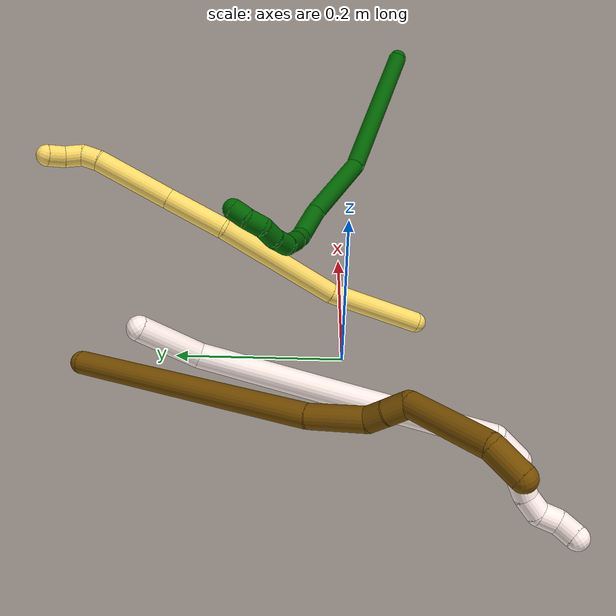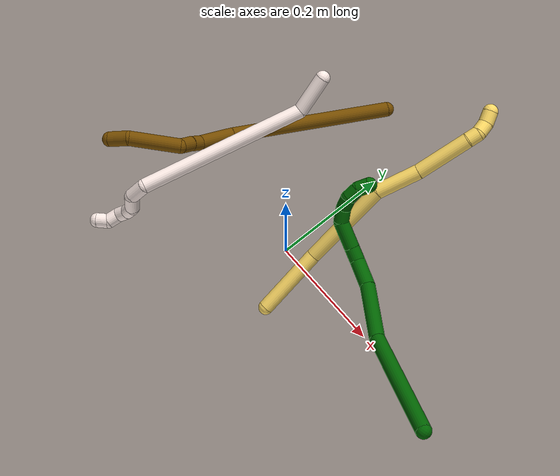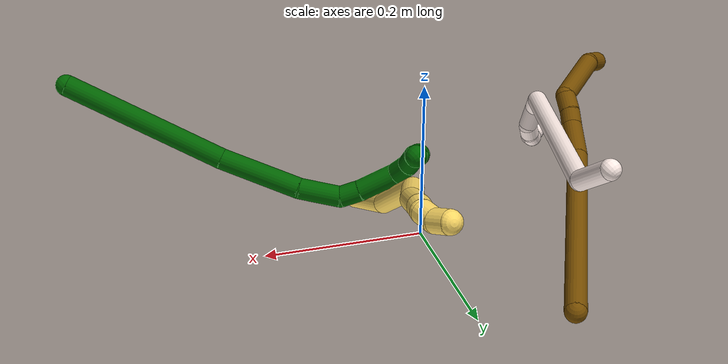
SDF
<sdf version="1.7">
 <world name="default">
  <model name="photoneo_s_sensor">
   <static>1</static>
   <pose>0 0 2 1.57079 1.57079 3.14159</pose>
   <link name="link">
    <inertial><mass>0.1</mass></inertial>
    <sensor name="sensor" type="depth">
     <update_rate>30</update_rate>
     <camera>
      <horizontal_fov>1.22</horizontal_fov>
      <image><width>1920</width><height>1200</height><format>B8G8R8</format></image>
      <clip><near>0.1</near><far>4</far></clip>
      <depth_camera><output>points</output></depth_camera>
     </camera>
     <plugin name="camera_plugin" filename="libgazebo_ros_depth_camera.so">
      <baseline>0.2</baseline>
      <alwaysOn>1</alwaysOn>
      <updateRate>0.0</updateRate>
      <cameraName>camera_ir</cameraName>
      <imageTopicName>/camera/color/image_raw</imageTopicName>
      <cameraInfoTopicName>/camera/color/camera_info</cameraInfoTopicName>
      <depthImageTopicName>/camera/depth/image_raw</depthImageTopicName>
      <depthImageCameraInfoTopicName>/camera/depth/camera_info</depthImageCameraInfoTopicName>
      <pointCloudTopicName>/camera/depth/points</pointCloudTopicName>
      <frameName>fr_optical</frameName>
      <pointCloudCutoff>0.1</pointCloudCutoff>
      <pointCloudCutoffMax>2.0</pointCloudCutoffMax>
      <distortionK1>0</distortionK1>
      <distortionK2>0</distortionK2>
      <distortionK3>0</distortionK3>
      <distortionT1>0</distortionT1>
      <distortionT2>0</distortionT2>
      <CxPrime>0</CxPrime>
      <Cx>0</Cx>
      <Cy>0</Cy>
      <focalLength>0</focalLength>
      <hackBaseline>0</hackBaseline>
     </plugin>
    </sensor>
   </link>
  </model>
  <model name="bin">
   <static>1</static>
   <link name="bottom">
    <collision name="collision-bottom">
     <pose>0 0 -0.01 0 -0 0</pose>
     <geometry><box><size>0.8 0.6 0.02</size></box></geometry>
     <surface>
      <friction><ode><mu>100</mu><mu2>100</mu2></ode></friction>
      <contact><collide_bitmask>65535</collide_bitmask></contact>
     </surface>
    </collision>
   </link>
   <link name="west_wall">
    <collision name="collision-west_wall">
     <pose>-0.41 0 0.1 0 -0 0</pose>
     <geometry><box><size>0.02 0.6 0.2</size></box></geometry>
     <surface>
      <friction><ode><mu>100</mu><mu2>100</mu2></ode></friction>
      <contact><collide_bitmask>65535</collide_bitmask></contact>
     </surface>
    </collision>
   </link>
   <link name="east_wall">
    <collision name="collision-east_wall">
     <pose>0.41 0 0.1 0 -0 0</pose>
     <geometry><box><size>0.02 0.6 0.2</size></box></geometry>
     <surface>
      <friction><ode><mu>100</mu><mu2>100</mu2></ode></friction>
      <contact><collide_bitmask>65535</collide_bitmask></contact>
     </surface>
    </collision>
   </link>
   <link name="south_wall">
    <collision name="collision-south_wall">
     <pose>0 -0.31 0.1 0 -0 0</pose>
     <geometry><box><size>0.8 0.02 0.2</size></box></geometry>
     <surface>
      <friction><ode><mu>100</mu><mu2>100</mu2></ode></friction>
      <contact><collide_bitmask>65535</collide_bitmask></contact>
     </surface>
    </collision>
   </link>
   <link name="north_wall">
    <collision name="collision-north_wall">
     <pose>0 0.31 0.1 0 -0 0</pose>
     <geometry><box><size>0.8 0.02 0.2</size></box></geometry>
     <surface>
      <friction><ode><mu>100</mu><mu2>100</mu2></ode></friction>
      <contact><collide_bitmask>65535</collide_bitmask></contact>
     </surface>
    </collision>
   </link>
  </model>
  <model name="5">
   <static>0</static>
   <link name="5">
    <collision name="collision-cylinder-e_1_1_4">
     <pose>0.000375 -0.001937 0.059121 0.032747 0.006339 0.000104</pose>
     <geometry><cylinder><radius>0.0125</radius><length>0.118307</length></cylinder></geometry>
     <surface>
      <friction><ode><mu>1.16</mu><mu2>1.16</mu2><slip1>0</slip1><slip2>0</slip2></ode></friction>
      <contact><ode><kp>1e+06</kp><kd>1</kd><max_vel>0</max_vel><min_depth>0.001</min_depth></ode></contact>
     </surface>
    </collision>
    <visual name="visual-cylinder-e_1_1_4">
     <pose>0.000375 -0.001937 0.059121 0.032747 0.006339 0.000104</pose>
     <geometry><cylinder><radius>0.0125</radius><length>0.118307</length></cylinder></geometry>
     <material><ambient>1 0.858824 0.4 1</ambient></material>
    </visual>
    <collision name="collision-cylinder-e_2_4_5">
     <pose>0.011414 0.005139 0.193836 -0.118659 0.139166 -0.00828</pose>
     <geometry><cylinder><radius>0.0125</radius><length>0.153746</length></cylinder></geometry>
     <surface>
      <friction><ode><mu>1.16</mu><mu2>1.16</mu2><slip1>0</slip1><slip2>0</slip2></ode></friction>
      <contact><ode><kp>1e+06</kp><kd>1</kd><max_vel>0</max_vel><min_depth>0.001</min_depth></ode></contact>
     </surface>
    </collision>
    <visual name="visual-cylinder-e_2_4_5">
     <pose>0.011414 0.005139 0.193836 -0.118659 0.139166 -0.00828</pose>
     <geometry><cylinder><radius>0.0125</radius><length>0.153746</length></cylinder></geometry>
     <material><ambient>1 0.858824 0.4 1</ambient></material>
    </visual>
    <collision name="collision-cylinder-e_3_5_6">
     <pose>0.015228 0.024733 0.304163 -0.295736 -0.186441 0.02785</pose>
     <geometry><cylinder><radius>0.0125</radius><length>0.073899</length></cylinder></geometry>
     <surface>
      <friction><ode><mu>1.16</mu><mu2>1.16</mu2><slip1>0</slip1><slip2>0</slip2></ode></friction>
      <contact><ode><kp>1e+06</kp><kd>1</kd><max_vel>0</max_vel><min_depth>0.001</min_depth></ode></contact>
     </surface>
    </collision>
    <visual name="visual-cylinder-e_3_5_6">
     <pose>0.015228 0.024733 0.304163 -0.295736 -0.186441 0.02785</pose>
     <geometry><cylinder><radius>0.0125</radius><length>0.073899</length></cylinder></geometry>
     <material><ambient>1 0.858824 0.4 1</ambient></material>
    </visual>
    <collision name="collision-cylinder-e_4_6_7">
     <pose>0.004846 0.045584 0.383912 -0.224265 -0.076366 0.008603</pose>
     <geometry><cylinder><radius>0.0125</radius><length>0.092615</length></cylinder></geometry>
     <surface>
      <friction><ode><mu>1.16</mu><mu2>1.16</mu2><slip1>0</slip1><slip2>0</slip2></ode></friction>
      <contact><ode><kp>1e+06</kp><kd>1</kd><max_vel>0</max_vel><min_depth>0.001</min_depth></ode></contact>
     </surface>
    </collision>
    <visual name="visual-cylinder-e_4_6_7">
     <pose>0.004846 0.045584 0.383912 -0.224265 -0.076366 0.008603</pose>
     <geometry><cylinder><radius>0.0125</radius><length>0.092615</length></cylinder></geometry>
     <material><ambient>1 0.858824 0.4 1</ambient></material>
    </visual>
    <collision name="collision-cylinder-e_5_7_8">
     <pose>-0.000916 0.057006 0.438693 -0.117682 -0.222996 0.013191</pose>
     <geometry><cylinder><radius>0.0125</radius><length>0.020164</length></cylinder></geometry>
     <surface>
      <friction><ode><mu>1.16</mu><mu2>1.16</mu2><slip1>0</slip1><slip2>0</slip2></ode></friction>
      <contact><ode><kp>1e+06</kp><kd>1</kd><max_vel>0</max_vel><min_depth>0.001</min_depth></ode></contact>
     </surface>
    </collision>
    <visual name="visual-cylinder-e_5_7_8">
     <pose>-0.000916 0.057006 0.438693 -0.117682 -0.222996 0.013191</pose>
     <geometry><cylinder><radius>0.0125</radius><length>0.020164</length></cylinder></geometry>
     <material><ambient>1 0.858824 0.4 1</ambient></material>
    </visual>
    <collision name="collision-cylinder-e_6_8_9">
     <pose>-0.006056 0.054534 0.457618 0.376979 -0.287187 -0.055148</pose>
     <geometry><cylinder><radius>0.0125</radius><length>0.020545</length></cylinder></geometry>
     <surface>
      <friction><ode><mu>1.16</mu><mu2>1.16</mu2><slip1>0</slip1><slip2>0</slip2></ode></friction>
      <contact><ode><kp>1e+06</kp><kd>1</kd><max_vel>0</max_vel><min_depth>0.001</min_depth></ode></contact>
     </surface>
    </collision>
    <visual name="visual-cylinder-e_6_8_9">
     <pose>-0.006056 0.054534 0.457618 0.376979 -0.287187 -0.055148</pose>
     <geometry><cylinder><radius>0.0125</radius><length>0.020545</length></cylinder></geometry>
     <material><ambient>1 0.858824 0.4 1</ambient></material>
    </visual>
    <collision name="collision-cylinder-e_7_9_2">
     <pose>-0.00794 0.046571 0.476132 0.434071 0.099188 0.021889</pose>
     <geometry><cylinder><radius>0.0125</radius><length>0.020723</length></cylinder></geometry>
     <surface>
      <friction><ode><mu>1.16</mu><mu2>1.16</mu2><slip1>0</slip1><slip2>0</slip2></ode></friction>
      <contact><ode><kp>1e+06</kp><kd>1</kd><max_vel>0</max_vel><min_depth>0.001</min_depth></ode></contact>
     </surface>
    </collision>
    <visual name="visual-cylinder-e_7_9_2">
     <pose>-0.00794 0.046571 0.476132 0.434071 0.099188 0.021889</pose>
     <geometry><cylinder><radius>0.0125</radius><length>0.020723</length></cylinder></geometry>
     <material><ambient>1 0.858824 0.4 1</ambient></material>
    </visual>
    <collision name="collision-sphere-2">
     <pose>-0.006913 0.042235 0.485487 0 -0 0</pose>
     <geometry><sphere><radius>0.0125</radius></sphere></geometry>
     <surface>
      <friction><ode><mu>1.16</mu><mu2>1.16</mu2><slip1>0</slip1><slip2>0</slip2></ode></friction>
      <contact><ode><kp>1e+06</kp><kd>1</kd><max_vel>0</max_vel><min_depth>0.001</min_depth></ode></contact>
     </surface>
    </collision>
    <visual name="visual-sphere-2">
     <pose>-0.006913 0.042235 0.485487 0 -0 0</pose>
     <geometry><sphere><radius>0.0125</radius></sphere></geometry>
     <material><ambient>1 0.858824 0.4 1</ambient></material>
    </visual>
    <collision name="collision-sphere-9">
     <pose>-0.008966 0.050908 0.466778 0 -0 0</pose>
     <geometry><sphere><radius>0.0125</radius></sphere></geometry>
     <surface>
      <friction><ode><mu>1.16</mu><mu2>1.16</mu2><slip1>0</slip1><slip2>0</slip2></ode></friction>
      <contact><ode><kp>1e+06</kp><kd>1</kd><max_vel>0</max_vel><min_depth>0.001</min_depth></ode></contact>
     </surface>
    </collision>
    <visual name="visual-sphere-9">
     <pose>-0.008966 0.050908 0.466778 0 -0 0</pose>
     <geometry><sphere><radius>0.0125</radius></sphere></geometry>
     <material><ambient>1 0.858824 0.4 1</ambient></material>
    </visual>
    <collision name="collision-sphere-4">
     <pose>0.00075 -0.003873 0.118241 0 -0 0</pose>
     <geometry><sphere><radius>0.0125</radius></sphere></geometry>
     <surface>
      <friction><ode><mu>1.16</mu><mu2>1.16</mu2><slip1>0</slip1><slip2>0</slip2></ode></friction>
      <contact><ode><kp>1e+06</kp><kd>1</kd><max_vel>0</max_vel><min_depth>0.001</min_depth></ode></contact>
     </surface>
    </collision>
    <visual name="visual-sphere-4">
     <pose>0.00075 -0.003873 0.118241 0 -0 0</pose>
     <geometry><sphere><radius>0.0125</radius></sphere></geometry>
     <material><ambient>1 0.858824 0.4 1</ambient></material>
    </visual>
    <collision name="collision-sphere-1">
     <geometry><sphere><radius>0.0125</radius></sphere></geometry>
     <surface>
      <friction><ode><mu>1.16</mu><mu2>1.16</mu2><slip1>0</slip1><slip2>0</slip2></ode></friction>
      <contact><ode><kp>1e+06</kp><kd>1</kd><max_vel>0</max_vel><min_depth>0.001</min_depth></ode></contact>
     </surface>
    </collision>
    <visual name="visual-sphere-1">
     <geometry><sphere><radius>0.0125</radius></sphere></geometry>
     <material><ambient>1 0.858824 0.4 1</ambient></material>
    </visual>
    <collision name="collision-sphere-8">
     <pose>-0.003146 0.058161 0.448458 0 -0 0</pose>
     <geometry><sphere><radius>0.0125</radius></sphere></geometry>
     <surface>
      <friction><ode><mu>1.16</mu><mu2>1.16</mu2><slip1>0</slip1><slip2>0</slip2></ode></friction>
      <contact><ode><kp>1e+06</kp><kd>1</kd><max_vel>0</max_vel><min_depth>0.001</min_depth></ode></contact>
     </surface>
    </collision>
    <visual name="visual-sphere-8">
     <pose>-0.003146 0.058161 0.448458 0 -0 0</pose>
     <geometry><sphere><radius>0.0125</radius></sphere></geometry>
     <material><ambient>1 0.858824 0.4 1</ambient></material>
    </visual>
    <collision name="collision-sphere-5">
     <pose>0.022077 0.014151 0.26943 0 -0 0</pose>
     <geometry><sphere><radius>0.0125</radius></sphere></geometry>
     <surface>
      <friction><ode><mu>1.16</mu><mu2>1.16</mu2><slip1>0</slip1><slip2>0</slip2></ode></friction>
      <contact><ode><kp>1e+06</kp><kd>1</kd><max_vel>0</max_vel><min_depth>0.001</min_depth></ode></contact>
     </surface>
    </collision>
    <visual name="visual-sphere-5">
     <pose>0.022077 0.014151 0.26943 0 -0 0</pose>
     <geometry><sphere><radius>0.0125</radius></sphere></geometry>
     <material><ambient>1 0.858824 0.4 1</ambient></material>
    </visual>
    <collision name="collision-sphere-6">
     <pose>0.008379 0.035315 0.338896 0 -0 0</pose>
     <geometry><sphere><radius>0.0125</radius></sphere></geometry>
     <surface>
      <friction><ode><mu>1.16</mu><mu2>1.16</mu2><slip1>0</slip1><slip2>0</slip2></ode></friction>
      <contact><ode><kp>1e+06</kp><kd>1</kd><max_vel>0</max_vel><min_depth>0.001</min_depth></ode></contact>
     </surface>
    </collision>
    <visual name="visual-sphere-6">
     <pose>0.008379 0.035315 0.338896 0 -0 0</pose>
     <geometry><sphere><radius>0.0125</radius></sphere></geometry>
     <material><ambient>1 0.858824 0.4 1</ambient></material>
    </visual>
    <collision name="collision-sphere-7">
     <pose>0.001313 0.055852 0.428929 0 -0 0</pose>
     <geometry><sphere><radius>0.0125</radius></sphere></geometry>
     <surface>
      <friction><ode><mu>1.16</mu><mu2>1.16</mu2><slip1>0</slip1><slip2>0</slip2></ode></friction>
      <contact><ode><kp>1e+06</kp><kd>1</kd><max_vel>0</max_vel><min_depth>0.001</min_depth></ode></contact>
     </surface>
    </collision>
    <visual name="visual-sphere-7">
     <pose>0.001313 0.055852 0.428929 0 -0 0</pose>
     <geometry><sphere><radius>0.0125</radius></sphere></geometry>
     <material><ambient>1 0.858824 0.4 1</ambient></material>
    </visual>
    <inertial>
     <pose>0.006132 0.019691 0.245888 0 -0 0</pose>
     <mass>0.5</mass>
     <inertia><ixx>0.000557</ixx><ixy>0</ixy><ixz>0</ixz><iyy>0.000559</iyy><iyz>0</iyz><izz>-5e-05</izz></inertia>
    </inertial>
   </link>
   <pose>0.059446 -0.093132 0.011408 0.689457 -1.00521 -2.32618</pose>
  </model>
  <model name="6">
   <static>0</static>
   <link name="6">
    <collision name="collision-cylinder-e_1_1_4">
     <pose>-0.045336 -0.072675 0.048286 0.984361 -0.479199 -0.260492</pose>
     <geometry><cylinder><radius>0.0125</radius><length>0.196658</length></cylinder></geometry>
     <surface>
      <friction><ode><mu>1.16</mu><mu2>1.16</mu2><slip1>0</slip1><slip2>0</slip2></ode></friction>
      <contact><ode><kp>1e+06</kp><kd>1</kd><max_vel>0</max_vel><min_depth>0.001</min_depth></ode></contact>
     </surface>
    </collision>
    <visual name="visual-cylinder-e_1_1_4">
     <pose>-0.045336 -0.072675 0.048286 0.984361 -0.479199 -0.260492</pose>
     <geometry><cylinder><radius>0.0125</radius><length>0.196658</length></cylinder></geometry>
     <material><ambient>0 0.392157 0.003922 1</ambient></material>
    </visual>
    <collision name="collision-cylinder-e_2_4_5">
     <pose>-0.124737 -0.172946 0.119692 0.873413 -0.757766 -0.367463</pose>
     <geometry><cylinder><radius>0.0125</radius><length>0.099126</length></cylinder></geometry>
     <surface>
      <friction><ode><mu>1.16</mu><mu2>1.16</mu2><slip1>0</slip1><slip2>0</slip2></ode></friction>
      <contact><ode><kp>1e+06</kp><kd>1</kd><max_vel>0</max_vel><min_depth>0.001</min_depth></ode></contact>
     </surface>
    </collision>
    <visual name="visual-cylinder-e_2_4_5">
     <pose>-0.124737 -0.172946 0.119692 0.873413 -0.757766 -0.367463</pose>
     <geometry><cylinder><radius>0.0125</radius><length>0.099126</length></cylinder></geometry>
     <material><ambient>0 0.392157 0.003922 1</ambient></material>
    </visual>
    <collision name="collision-cylinder-e_3_5_6">
     <pose>-0.172751 -0.213078 0.158192 0.683906 -0.612755 -0.224248</pose>
     <geometry><cylinder><radius>0.0125</radius><length>0.048509</length></cylinder></geometry>
     <surface>
      <friction><ode><mu>1.16</mu><mu2>1.16</mu2><slip1>0</slip1><slip2>0</slip2></ode></friction>
      <contact><ode><kp>1e+06</kp><kd>1</kd><max_vel>0</max_vel><min_depth>0.001</min_depth></ode></contact>
     </surface>
    </collision>
    <visual name="visual-cylinder-e_3_5_6">
     <pose>-0.172751 -0.213078 0.158192 0.683906 -0.612755 -0.224248</pose>
     <geometry><cylinder><radius>0.0125</radius><length>0.048509</length></cylinder></geometry>
     <material><ambient>0 0.392157 0.003922 1</ambient></material>
    </visual>
    <collision name="collision-cylinder-e_4_6_7">
     <pose>-0.19325 -0.226039 0.183563 0.042405 -0.579849 -0.012653</pose>
     <geometry><cylinder><radius>0.0125</radius><length>0.023908</length></cylinder></geometry>
     <surface>
      <friction><ode><mu>1.16</mu><mu2>1.16</mu2><slip1>0</slip1><slip2>0</slip2></ode></friction>
      <contact><ode><kp>1e+06</kp><kd>1</kd><max_vel>0</max_vel><min_depth>0.001</min_depth></ode></contact>
     </surface>
    </collision>
    <visual name="visual-cylinder-e_4_6_7">
     <pose>-0.19325 -0.226039 0.183563 0.042405 -0.579849 -0.012653</pose>
     <geometry><cylinder><radius>0.0125</radius><length>0.023908</length></cylinder></geometry>
     <material><ambient>0 0.392157 0.003922 1</ambient></material>
    </visual>
    <collision name="collision-cylinder-e_5_7_8">
     <pose>-0.211602 -0.224365 0.212886 -0.108086 -0.545487 0.03026</pose>
     <geometry><cylinder><radius>0.0125</radius><length>0.045494</length></cylinder></geometry>
     <surface>
      <friction><ode><mu>1.16</mu><mu2>1.16</mu2><slip1>0</slip1><slip2>0</slip2></ode></friction>
      <contact><ode><kp>1e+06</kp><kd>1</kd><max_vel>0</max_vel><min_depth>0.001</min_depth></ode></contact>
     </surface>
    </collision>
    <visual name="visual-cylinder-e_5_7_8">
     <pose>-0.211602 -0.224365 0.212886 -0.108086 -0.545487 0.03026</pose>
     <geometry><cylinder><radius>0.0125</radius><length>0.045494</length></cylinder></geometry>
     <material><ambient>0 0.392157 0.003922 1</ambient></material>
    </visual>
    <collision name="collision-cylinder-e_6_8_9">
     <pose>-0.232636 -0.21708 0.237596 -0.767324 -0.890425 0.380568</pose>
     <geometry><cylinder><radius>0.0125</radius><length>0.023753</length></cylinder></geometry>
     <surface>
      <friction><ode><mu>1.16</mu><mu2>1.16</mu2><slip1>0</slip1><slip2>0</slip2></ode></friction>
      <contact><ode><kp>1e+06</kp><kd>1</kd><max_vel>0</max_vel><min_depth>0.001</min_depth></ode></contact>
     </surface>
    </collision>
    <visual name="visual-cylinder-e_6_8_9">
     <pose>-0.232636 -0.21708 0.237596 -0.767324 -0.890425 0.380568</pose>
     <geometry><cylinder><radius>0.0125</radius><length>0.023753</length></cylinder></geometry>
     <material><ambient>0 0.392157 0.003922 1</ambient></material>
    </visual>
    <collision name="collision-cylinder-e_7_9_10">
     <pose>-0.249882 -0.204789 0.245479 -1.23179 -0.816241 0.593944</pose>
     <geometry><cylinder><radius>0.0125</radius><length>0.021998</length></cylinder></geometry>
     <surface>
      <friction><ode><mu>1.16</mu><mu2>1.16</mu2><slip1>0</slip1><slip2>0</slip2></ode></friction>
      <contact><ode><kp>1e+06</kp><kd>1</kd><max_vel>0</max_vel><min_depth>0.001</min_depth></ode></contact>
     </surface>
    </collision>
    <visual name="visual-cylinder-e_7_9_10">
     <pose>-0.249882 -0.204789 0.245479 -1.23179 -0.816241 0.593944</pose>
     <geometry><cylinder><radius>0.0125</radius><length>0.021998</length></cylinder></geometry>
     <material><ambient>0 0.392157 0.003922 1</ambient></material>
    </visual>
    <collision name="collision-cylinder-e_8_10_11">
     <pose>-0.266868 -0.193221 0.246263 -1.939 -1.08104 1.43742</pose>
     <geometry><cylinder><radius>0.0125</radius><length>0.020336</length></cylinder></geometry>
     <surface>
      <friction><ode><mu>1.16</mu><mu2>1.16</mu2><slip1>0</slip1><slip2>0</slip2></ode></friction>
      <contact><ode><kp>1e+06</kp><kd>1</kd><max_vel>0</max_vel><min_depth>0.001</min_depth></ode></contact>
     </surface>
    </collision>
    <visual name="visual-cylinder-e_8_10_11">
     <pose>-0.266868 -0.193221 0.246263 -1.939 -1.08104 1.43742</pose>
     <geometry><cylinder><radius>0.0125</radius><length>0.020336</length></cylinder></geometry>
     <material><ambient>0 0.392157 0.003922 1</ambient></material>
    </visual>
    <collision name="collision-cylinder-e_9_11_2">
     <pose>-0.283191 -0.18425 0.239265 -2.43456 -0.814068 1.72568</pose>
     <geometry><cylinder><radius>0.0125</radius><length>0.020218</length></cylinder></geometry>
     <surface>
      <friction><ode><mu>1.16</mu><mu2>1.16</mu2><slip1>0</slip1><slip2>0</slip2></ode></friction>
      <contact><ode><kp>1e+06</kp><kd>1</kd><max_vel>0</max_vel><min_depth>0.001</min_depth></ode></contact>
     </surface>
    </collision>
    <visual name="visual-cylinder-e_9_11_2">
     <pose>-0.283191 -0.18425 0.239265 -2.43456 -0.814068 1.72568</pose>
     <geometry><cylinder><radius>0.0125</radius><length>0.020218</length></cylinder></geometry>
     <material><ambient>0 0.392157 0.003922 1</ambient></material>
    </visual>
    <collision name="collision-sphere-2">
     <pose>-0.290541 -0.179742 0.233988 0 -0 0</pose>
     <geometry><sphere><radius>0.0125</radius></sphere></geometry>
     <surface>
      <friction><ode><mu>1.16</mu><mu2>1.16</mu2><slip1>0</slip1><slip2>0</slip2></ode></friction>
      <contact><ode><kp>1e+06</kp><kd>1</kd><max_vel>0</max_vel><min_depth>0.001</min_depth></ode></contact>
     </surface>
    </collision>
    <visual name="visual-sphere-2">
     <pose>-0.290541 -0.179742 0.233988 0 -0 0</pose>
     <geometry><sphere><radius>0.0125</radius></sphere></geometry>
     <material><ambient>0 0.392157 0.003922 1</ambient></material>
    </visual>
    <collision name="collision-sphere-11">
     <pose>-0.27584 -0.188759 0.244542 0 -0 0</pose>
     <geometry><sphere><radius>0.0125</radius></sphere></geometry>
     <surface>
      <friction><ode><mu>1.16</mu><mu2>1.16</mu2><slip1>0</slip1><slip2>0</slip2></ode></friction>
      <contact><ode><kp>1e+06</kp><kd>1</kd><max_vel>0</max_vel><min_depth>0.001</min_depth></ode></contact>
     </surface>
    </collision>
    <visual name="visual-sphere-11">
     <pose>-0.27584 -0.188759 0.244542 0 -0 0</pose>
     <geometry><sphere><radius>0.0125</radius></sphere></geometry>
     <material><ambient>0 0.392157 0.003922 1</ambient></material>
    </visual>
    <collision name="collision-sphere-10">
     <pose>-0.257895 -0.197684 0.247985 0 -0 0</pose>
     <geometry><sphere><radius>0.0125</radius></sphere></geometry>
     <surface>
      <friction><ode><mu>1.16</mu><mu2>1.16</mu2><slip1>0</slip1><slip2>0</slip2></ode></friction>
      <contact><ode><kp>1e+06</kp><kd>1</kd><max_vel>0</max_vel><min_depth>0.001</min_depth></ode></contact>
     </surface>
    </collision>
    <visual name="visual-sphere-10">
     <pose>-0.257895 -0.197684 0.247985 0 -0 0</pose>
     <geometry><sphere><radius>0.0125</radius></sphere></geometry>
     <material><ambient>0 0.392157 0.003922 1</ambient></material>
    </visual>
    <collision name="collision-sphere-9">
     <pose>-0.241868 -0.211894 0.242974 0 -0 0</pose>
     <geometry><sphere><radius>0.0125</radius></sphere></geometry>
     <surface>
      <friction><ode><mu>1.16</mu><mu2>1.16</mu2><slip1>0</slip1><slip2>0</slip2></ode></friction>
      <contact><ode><kp>1e+06</kp><kd>1</kd><max_vel>0</max_vel><min_depth>0.001</min_depth></ode></contact>
     </surface>
    </collision>
    <visual name="visual-sphere-9">
     <pose>-0.241868 -0.211894 0.242974 0 -0 0</pose>
     <geometry><sphere><radius>0.0125</radius></sphere></geometry>
     <material><ambient>0 0.392157 0.003922 1</ambient></material>
    </visual>
    <collision name="collision-sphere-4">
     <pose>-0.090673 -0.14535 0.096571 0 -0 0</pose>
     <geometry><sphere><radius>0.0125</radius></sphere></geometry>
     <surface>
      <friction><ode><mu>1.16</mu><mu2>1.16</mu2><slip1>0</slip1><slip2>0</slip2></ode></friction>
      <contact><ode><kp>1e+06</kp><kd>1</kd><max_vel>0</max_vel><min_depth>0.001</min_depth></ode></contact>
     </surface>
    </collision>
    <visual name="visual-sphere-4">
     <pose>-0.090673 -0.14535 0.096571 0 -0 0</pose>
     <geometry><sphere><radius>0.0125</radius></sphere></geometry>
     <material><ambient>0 0.392157 0.003922 1</ambient></material>
    </visual>
    <collision name="collision-sphere-1">
     <geometry><sphere><radius>0.0125</radius></sphere></geometry>
     <surface>
      <friction><ode><mu>1.16</mu><mu2>1.16</mu2><slip1>0</slip1><slip2>0</slip2></ode></friction>
      <contact><ode><kp>1e+06</kp><kd>1</kd><max_vel>0</max_vel><min_depth>0.001</min_depth></ode></contact>
     </surface>
    </collision>
    <visual name="visual-sphere-1">
     <geometry><sphere><radius>0.0125</radius></sphere></geometry>
     <material><ambient>0 0.392157 0.003922 1</ambient></material>
    </visual>
    <collision name="collision-sphere-8">
     <pose>-0.223404 -0.222267 0.232219 0 -0 0</pose>
     <geometry><sphere><radius>0.0125</radius></sphere></geometry>
     <surface>
      <friction><ode><mu>1.16</mu><mu2>1.16</mu2><slip1>0</slip1><slip2>0</slip2></ode></friction>
      <contact><ode><kp>1e+06</kp><kd>1</kd><max_vel>0</max_vel><min_depth>0.001</min_depth></ode></contact>
     </surface>
    </collision>
    <visual name="visual-sphere-8">
     <pose>-0.223404 -0.222267 0.232219 0 -0 0</pose>
     <geometry><sphere><radius>0.0125</radius></sphere></geometry>
     <material><ambient>0 0.392157 0.003922 1</ambient></material>
    </visual>
    <collision name="collision-sphere-5">
     <pose>-0.158802 -0.200542 0.142812 0 -0 0</pose>
     <geometry><sphere><radius>0.0125</radius></sphere></geometry>
     <surface>
      <friction><ode><mu>1.16</mu><mu2>1.16</mu2><slip1>0</slip1><slip2>0</slip2></ode></friction>
      <contact><ode><kp>1e+06</kp><kd>1</kd><max_vel>0</max_vel><min_depth>0.001</min_depth></ode></contact>
     </surface>
    </collision>
    <visual name="visual-sphere-5">
     <pose>-0.158802 -0.200542 0.142812 0 -0 0</pose>
     <geometry><sphere><radius>0.0125</radius></sphere></geometry>
     <material><ambient>0 0.392157 0.003922 1</ambient></material>
    </visual>
    <collision name="collision-sphere-6">
     <pose>-0.186701 -0.225615 0.173571 0 -0 0</pose>
     <geometry><sphere><radius>0.0125</radius></sphere></geometry>
     <surface>
      <friction><ode><mu>1.16</mu><mu2>1.16</mu2><slip1>0</slip1><slip2>0</slip2></ode></friction>
      <contact><ode><kp>1e+06</kp><kd>1</kd><max_vel>0</max_vel><min_depth>0.001</min_depth></ode></contact>
     </surface>
    </collision>
    <visual name="visual-sphere-6">
     <pose>-0.186701 -0.225615 0.173571 0 -0 0</pose>
     <geometry><sphere><radius>0.0125</radius></sphere></geometry>
     <material><ambient>0 0.392157 0.003922 1</ambient></material>
    </visual>
    <collision name="collision-sphere-7">
     <pose>-0.1998 -0.226463 0.193554 0 -0 0</pose>
     <geometry><sphere><radius>0.0125</radius></sphere></geometry>
     <surface>
      <friction><ode><mu>1.16</mu><mu2>1.16</mu2><slip1>0</slip1><slip2>0</slip2></ode></friction>
      <contact><ode><kp>1e+06</kp><kd>1</kd><max_vel>0</max_vel><min_depth>0.001</min_depth></ode></contact>
     </surface>
    </collision>
    <visual name="visual-sphere-7">
     <pose>-0.1998 -0.226463 0.193554 0 -0 0</pose>
     <geometry><sphere><radius>0.0125</radius></sphere></geometry>
     <material><ambient>0 0.392157 0.003922 1</ambient></material>
    </visual>
    <inertial>
     <pose>-0.132165 -0.149398 0.127994 0 -0 0</pose>
     <mass>0.5</mass>
     <inertia>
      <ixx>0.000438</ixx>
      <ixy>0</ixy>
      <ixz>0</ixz>
      <iyy>0.000318</iyy>
      <iyz>0</iyz>
      <izz>0.000914</izz>
     </inertia>
    </inertial>
   </link>
   <pose>0.407425 -0.081297 0.216929 1.22375 0.169891 -1.28534</pose>
  </model>
  <model name="11">
   <static>0</static>
   <link name="11">
    <collision name="collision-cylinder-e_1_1_4">
     <pose>0.028022 -0.009012 0.015903 0.515572 0.992811 0.283693</pose>
     <geometry><cylinder><radius>0.0125</radius><length>0.066914</length></cylinder></geometry>
     <surface>
      <friction><ode><mu>1.16</mu><mu2>1.16</mu2><slip1>0</slip1><slip2>0</slip2></ode></friction>
      <contact><ode><kp>1e+06</kp><kd>1</kd><max_vel>0</max_vel><min_depth>0.001</min_depth></ode></contact>
     </surface>
    </collision>
    <visual name="visual-cylinder-e_1_1_4">
     <pose>0.028022 -0.009012 0.015903 0.515572 0.992811 0.283693</pose>
     <geometry><cylinder><radius>0.0125</radius><length>0.066914</length></cylinder></geometry>
     <material><ambient>1 0.933333 0.909804 1</ambient></material>
    </visual>
    <collision name="collision-cylinder-e_2_4_5">
     <pose>0.109757 -0.110168 0.128839 0.759555 0.381708 0.153933</pose>
     <geometry><cylinder><radius>0.0125</radius><length>0.288381</length></cylinder></geometry>
     <surface>
      <friction><ode><mu>1.16</mu><mu2>1.16</mu2><slip1>0</slip1><slip2>0</slip2></ode></friction>
      <contact><ode><kp>1e+06</kp><kd>1</kd><max_vel>0</max_vel><min_depth>0.001</min_depth></ode></contact>
     </surface>
    </collision>
    <visual name="visual-cylinder-e_2_4_5">
     <pose>0.109757 -0.110168 0.128839 0.759555 0.381708 0.153933</pose>
     <geometry><cylinder><radius>0.0125</radius><length>0.288381</length></cylinder></geometry>
     <material><ambient>1 0.933333 0.909804 1</ambient></material>
    </visual>
    <collision name="collision-cylinder-e_3_5_6">
     <pose>0.176545 -0.210972 0.22964 1.1605 0.945258 0.64678</pose>
     <geometry><cylinder><radius>0.0125</radius><length>0.032261</length></cylinder></geometry>
     <surface>
      <friction><ode><mu>1.16</mu><mu2>1.16</mu2><slip1>0</slip1><slip2>0</slip2></ode></friction>
      <contact><ode><kp>1e+06</kp><kd>1</kd><max_vel>0</max_vel><min_depth>0.001</min_depth></ode></contact>
     </surface>
    </collision>
    <visual name="visual-cylinder-e_3_5_6">
     <pose>0.176545 -0.210972 0.22964 1.1605 0.945258 0.64678</pose>
     <geometry><cylinder><radius>0.0125</radius><length>0.032261</length></cylinder></geometry>
     <material><ambient>1 0.933333 0.909804 1</ambient></material>
    </visual>
    <collision name="collision-cylinder-e_4_6_7">
     <pose>0.205068 -0.219467 0.2311 -3.06967 1.42213 -3.05811</pose>
     <geometry><cylinder><radius>0.0125</radius><length>0.031239</length></cylinder></geometry>
     <surface>
      <friction><ode><mu>1.16</mu><mu2>1.16</mu2><slip1>0</slip1><slip2>0</slip2></ode></friction>
      <contact><ode><kp>1e+06</kp><kd>1</kd><max_vel>0</max_vel><min_depth>0.001</min_depth></ode></contact>
     </surface>
    </collision>
    <visual name="visual-cylinder-e_4_6_7">
     <pose>0.205068 -0.219467 0.2311 -3.06967 1.42213 -3.05811</pose>
     <geometry><cylinder><radius>0.0125</radius><length>0.031239</length></cylinder></geometry>
     <material><ambient>1 0.933333 0.909804 1</ambient></material>
    </visual>
    <collision name="collision-cylinder-e_5_7_8">
     <pose>0.229035 -0.224659 0.227294 1.84358 0.992306 1.23951</pose>
     <geometry><cylinder><radius>0.0125</radius><length>0.020351</length></cylinder></geometry>
     <surface>
      <friction><ode><mu>1.16</mu><mu2>1.16</mu2><slip1>0</slip1><slip2>0</slip2></ode></friction>
      <contact><ode><kp>1e+06</kp><kd>1</kd><max_vel>0</max_vel><min_depth>0.001</min_depth></ode></contact>
     </surface>
    </collision>
    <visual name="visual-cylinder-e_5_7_8">
     <pose>0.229035 -0.224659 0.227294 1.84358 0.992306 1.23951</pose>
     <geometry><cylinder><radius>0.0125</radius><length>0.020351</length></cylinder></geometry>
     <material><ambient>1 0.933333 0.909804 1</ambient></material>
    </visual>
    <collision name="collision-cylinder-e_6_8_9">
     <pose>0.244404 -0.237285 0.226421 1.48487 0.753839 0.696792</pose>
     <geometry><cylinder><radius>0.0125</radius><length>0.020013</length></cylinder></geometry>
     <surface>
      <friction><ode><mu>1.16</mu><mu2>1.16</mu2><slip1>0</slip1><slip2>0</slip2></ode></friction>
      <contact><ode><kp>1e+06</kp><kd>1</kd><max_vel>0</max_vel><min_depth>0.001</min_depth></ode></contact>
     </surface>
    </collision>
    <visual name="visual-cylinder-e_6_8_9">
     <pose>0.244404 -0.237285 0.226421 1.48487 0.753839 0.696792</pose>
     <geometry><cylinder><radius>0.0125</radius><length>0.020013</length></cylinder></geometry>
     <material><ambient>1 0.933333 0.909804 1</ambient></material>
    </visual>
    <collision name="collision-cylinder-e_7_9_10">
     <pose>0.256998 -0.250768 0.232952 0.810875 0.590448 0.259592</pose>
     <geometry><cylinder><radius>0.0125</radius><length>0.020639</length></cylinder></geometry>
     <surface>
      <friction><ode><mu>1.16</mu><mu2>1.16</mu2><slip1>0</slip1><slip2>0</slip2></ode></friction>
      <contact><ode><kp>1e+06</kp><kd>1</kd><max_vel>0</max_vel><min_depth>0.001</min_depth></ode></contact>
     </surface>
    </collision>
    <visual name="visual-cylinder-e_7_9_10">
     <pose>0.256998 -0.250768 0.232952 0.810875 0.590448 0.259592</pose>
     <geometry><cylinder><radius>0.0125</radius><length>0.020639</length></cylinder></geometry>
     <material><ambient>1 0.933333 0.909804 1</ambient></material>
    </visual>
    <collision name="collision-cylinder-e_8_10_2">
     <pose>0.264591 -0.266623 0.241234 1.32915 0.183993 0.144309</pose>
     <geometry><cylinder><radius>0.0125</radius><length>0.020202</length></cylinder></geometry>
     <surface>
      <friction><ode><mu>1.16</mu><mu2>1.16</mu2><slip1>0</slip1><slip2>0</slip2></ode></friction>
      <contact><ode><kp>1e+06</kp><kd>1</kd><max_vel>0</max_vel><min_depth>0.001</min_depth></ode></contact>
     </surface>
    </collision>
    <visual name="visual-cylinder-e_8_10_2">
     <pose>0.264591 -0.266623 0.241234 1.32915 0.183993 0.144309</pose>
     <geometry><cylinder><radius>0.0125</radius><length>0.020202</length></cylinder></geometry>
     <material><ambient>1 0.933333 0.909804 1</ambient></material>
    </visual>
    <collision name="collision-sphere-2">
     <pose>0.266439 -0.276265 0.24361 0 -0 0</pose>
     <geometry><sphere><radius>0.0125</radius></sphere></geometry>
     <surface>
      <friction><ode><mu>1.16</mu><mu2>1.16</mu2><slip1>0</slip1><slip2>0</slip2></ode></friction>
      <contact><ode><kp>1e+06</kp><kd>1</kd><max_vel>0</max_vel><min_depth>0.001</min_depth></ode></contact>
     </surface>
    </collision>
    <visual name="visual-sphere-2">
     <pose>0.266439 -0.276265 0.24361 0 -0 0</pose>
     <geometry><sphere><radius>0.0125</radius></sphere></geometry>
     <material><ambient>1 0.933333 0.909804 1</ambient></material>
    </visual>
    <collision name="collision-sphere-10">
     <pose>0.262743 -0.256982 0.238857 0 -0 0</pose>
     <geometry><sphere><radius>0.0125</radius></sphere></geometry>
     <surface>
      <friction><ode><mu>1.16</mu><mu2>1.16</mu2><slip1>0</slip1><slip2>0</slip2></ode></friction>
      <contact><ode><kp>1e+06</kp><kd>1</kd><max_vel>0</max_vel><min_depth>0.001</min_depth></ode></contact>
     </surface>
    </collision>
    <visual name="visual-sphere-10">
     <pose>0.262743 -0.256982 0.238857 0 -0 0</pose>
     <geometry><sphere><radius>0.0125</radius></sphere></geometry>
     <material><ambient>1 0.933333 0.909804 1</ambient></material>
    </visual>
    <collision name="collision-sphere-9">
     <pose>0.251253 -0.244554 0.227047 0 -0 0</pose>
     <geometry><sphere><radius>0.0125</radius></sphere></geometry>
     <surface>
      <friction><ode><mu>1.16</mu><mu2>1.16</mu2><slip1>0</slip1><slip2>0</slip2></ode></friction>
      <contact><ode><kp>1e+06</kp><kd>1</kd><max_vel>0</max_vel><min_depth>0.001</min_depth></ode></contact>
     </surface>
    </collision>
    <visual name="visual-sphere-9">
     <pose>0.251253 -0.244554 0.227047 0 -0 0</pose>
     <geometry><sphere><radius>0.0125</radius></sphere></geometry>
     <material><ambient>1 0.933333 0.909804 1</ambient></material>
    </visual>
    <collision name="collision-sphere-4">
     <pose>0.056045 -0.018024 0.031806 0 -0 0</pose>
     <geometry><sphere><radius>0.0125</radius></sphere></geometry>
     <surface>
      <friction><ode><mu>1.16</mu><mu2>1.16</mu2><slip1>0</slip1><slip2>0</slip2></ode></friction>
      <contact><ode><kp>1e+06</kp><kd>1</kd><max_vel>0</max_vel><min_depth>0.001</min_depth></ode></contact>
     </surface>
    </collision>
    <visual name="visual-sphere-4">
     <pose>0.056045 -0.018024 0.031806 0 -0 0</pose>
     <geometry><sphere><radius>0.0125</radius></sphere></geometry>
     <material><ambient>1 0.933333 0.909804 1</ambient></material>
    </visual>
    <collision name="collision-sphere-1">
     <geometry><sphere><radius>0.0125</radius></sphere></geometry>
     <surface>
      <friction><ode><mu>1.16</mu><mu2>1.16</mu2><slip1>0</slip1><slip2>0</slip2></ode></friction>
      <contact><ode><kp>1e+06</kp><kd>1</kd><max_vel>0</max_vel><min_depth>0.001</min_depth></ode></contact>
     </surface>
    </collision>
    <visual name="visual-sphere-1">
     <geometry><sphere><radius>0.0125</radius></sphere></geometry>
     <material><ambient>1 0.933333 0.909804 1</ambient></material>
    </visual>
    <collision name="collision-sphere-8">
     <pose>0.237555 -0.230016 0.225795 0 -0 0</pose>
     <geometry><sphere><radius>0.0125</radius></sphere></geometry>
     <surface>
      <friction><ode><mu>1.16</mu><mu2>1.16</mu2><slip1>0</slip1><slip2>0</slip2></ode></friction>
      <contact><ode><kp>1e+06</kp><kd>1</kd><max_vel>0</max_vel><min_depth>0.001</min_depth></ode></contact>
     </surface>
    </collision>
    <visual name="visual-sphere-8">
     <pose>0.237555 -0.230016 0.225795 0 -0 0</pose>
     <geometry><sphere><radius>0.0125</radius></sphere></geometry>
     <material><ambient>1 0.933333 0.909804 1</ambient></material>
    </visual>
    <collision name="collision-sphere-5">
     <pose>0.163469 -0.202311 0.225873 0 -0 0</pose>
     <geometry><sphere><radius>0.0125</radius></sphere></geometry>
     <surface>
      <friction><ode><mu>1.16</mu><mu2>1.16</mu2><slip1>0</slip1><slip2>0</slip2></ode></friction>
      <contact><ode><kp>1e+06</kp><kd>1</kd><max_vel>0</max_vel><min_depth>0.001</min_depth></ode></contact>
     </surface>
    </collision>
    <visual name="visual-sphere-5">
     <pose>0.163469 -0.202311 0.225873 0 -0 0</pose>
     <geometry><sphere><radius>0.0125</radius></sphere></geometry>
     <material><ambient>1 0.933333 0.909804 1</ambient></material>
    </visual>
    <collision name="collision-sphere-6">
     <pose>0.189621 -0.219633 0.233408 0 -0 0</pose>
     <geometry><sphere><radius>0.0125</radius></sphere></geometry>
     <surface>
      <friction><ode><mu>1.16</mu><mu2>1.16</mu2><slip1>0</slip1><slip2>0</slip2></ode></friction>
      <contact><ode><kp>1e+06</kp><kd>1</kd><max_vel>0</max_vel><min_depth>0.001</min_depth></ode></contact>
     </surface>
    </collision>
    <visual name="visual-sphere-6">
     <pose>0.189621 -0.219633 0.233408 0 -0 0</pose>
     <geometry><sphere><radius>0.0125</radius></sphere></geometry>
     <material><ambient>1 0.933333 0.909804 1</ambient></material>
    </visual>
    <collision name="collision-sphere-7">
     <pose>0.220515 -0.219301 0.228793 0 -0 0</pose>
     <geometry><sphere><radius>0.0125</radius></sphere></geometry>
     <surface>
      <friction><ode><mu>1.16</mu><mu2>1.16</mu2><slip1>0</slip1><slip2>0</slip2></ode></friction>
      <contact><ode><kp>1e+06</kp><kd>1</kd><max_vel>0</max_vel><min_depth>0.001</min_depth></ode></contact>
     </surface>
    </collision>
    <visual name="visual-sphere-7">
     <pose>0.220515 -0.219301 0.228793 0 -0 0</pose>
     <geometry><sphere><radius>0.0125</radius></sphere></geometry>
     <material><ambient>1 0.933333 0.909804 1</ambient></material>
    </visual>
    <inertial>
     <pose>0.131661 -0.131836 0.14337 0 -0 0</pose>
     <mass>0.5</mass>
     <inertia>
      <ixx>0.002177</ixx>
      <ixy>0</ixy>
      <ixz>0</ixz>
      <iyy>0.001828</iyy>
      <iyz>0</iyz>
      <izz>0.000535</izz>
     </inertia>
    </inertial>
   </link>
   <pose>-0.144985 0.200452 0.168815 0.095044 1.1581 -1.03686</pose>
  </model>
  <model name="12">
   <static>0</static>
   <link name="12">
    <collision name="collision-cylinder-e_1_1_4">
     <pose>-0.095195 -0.097746 -0.024066 1.8122 -0.757475 -0.939751</pose>
     <geometry><cylinder><radius>0.0125</radius><length>0.277096</length></cylinder></geometry>
     <surface>
      <friction><ode><mu>1.16</mu><mu2>1.16</mu2><slip1>0</slip1><slip2>0</slip2></ode></friction>
      <contact><ode><kp>1e+06</kp><kd>1</kd><max_vel>0</max_vel><min_depth>0.001</min_depth></ode></contact>
     </surface>
    </collision>
    <visual name="visual-cylinder-e_1_1_4">
     <pose>-0.095195 -0.097746 -0.024066 1.8122 -0.757475 -0.939751</pose>
     <geometry><cylinder><radius>0.0125</radius><length>0.277096</length></cylinder></geometry>
     <material><ambient>0.466667 0.301961 0 1</ambient></material>
    </visual>
    <collision name="collision-cylinder-e_2_4_5">
     <pose>-0.208039 -0.219156 -0.050548 1.6726 -0.638366 -0.701653</pose>
     <geometry><cylinder><radius>0.0125</radius><length>0.059239</length></cylinder></geometry>
     <surface>
      <friction><ode><mu>1.16</mu><mu2>1.16</mu2><slip1>0</slip1><slip2>0</slip2></ode></friction>
      <contact><ode><kp>1e+06</kp><kd>1</kd><max_vel>0</max_vel><min_depth>0.001</min_depth></ode></contact>
     </surface>
    </collision>
    <visual name="visual-cylinder-e_2_4_5">
     <pose>-0.208039 -0.219156 -0.050548 1.6726 -0.638366 -0.701653</pose>
     <geometry><cylinder><radius>0.0125</radius><length>0.059239</length></cylinder></geometry>
     <material><ambient>0.466667 0.301961 0 1</ambient></material>
    </visual>
    <collision name="collision-cylinder-e_3_5_6">
     <pose>-0.230972 -0.250947 -0.049504 1.16812 -0.538969 -0.361156</pose>
     <geometry><cylinder><radius>0.0125</radius><length>0.020586</length></cylinder></geometry>
     <surface>
      <friction><ode><mu>1.16</mu><mu2>1.16</mu2><slip1>0</slip1><slip2>0</slip2></ode></friction>
      <contact><ode><kp>1e+06</kp><kd>1</kd><max_vel>0</max_vel><min_depth>0.001</min_depth></ode></contact>
     </surface>
    </collision>
    <visual name="visual-cylinder-e_3_5_6">
     <pose>-0.230972 -0.250947 -0.049504 1.16812 -0.538969 -0.361156</pose>
     <geometry><cylinder><radius>0.0125</radius><length>0.020586</length></cylinder></geometry>
     <material><ambient>0.466667 0.301961 0 1</ambient></material>
    </visual>
    <collision name="collision-cylinder-e_4_6_7">
     <pose>-0.241433 -0.269173 -0.042668 1.24839 -0.45267 -0.32873</pose>
     <geometry><cylinder><radius>0.0125</radius><length>0.02368</length></cylinder></geometry>
     <surface>
      <friction><ode><mu>1.16</mu><mu2>1.16</mu2><slip1>0</slip1><slip2>0</slip2></ode></friction>
      <contact><ode><kp>1e+06</kp><kd>1</kd><max_vel>0</max_vel><min_depth>0.001</min_depth></ode></contact>
     </surface>
    </collision>
    <visual name="visual-cylinder-e_4_6_7">
     <pose>-0.241433 -0.269173 -0.042668 1.24839 -0.45267 -0.32873</pose>
     <geometry><cylinder><radius>0.0125</radius><length>0.02368</length></cylinder></geometry>
     <material><ambient>0.466667 0.301961 0 1</ambient></material>
    </visual>
    <collision name="collision-cylinder-e_5_7_8">
     <pose>-0.284753 -0.297696 -0.045388 1.89017 -1.10015 -1.40742</pose>
     <geometry><cylinder><radius>0.0125</radius><length>0.085589</length></cylinder></geometry>
     <surface>
      <friction><ode><mu>1.16</mu><mu2>1.16</mu2><slip1>0</slip1><slip2>0</slip2></ode></friction>
      <contact><ode><kp>1e+06</kp><kd>1</kd><max_vel>0</max_vel><min_depth>0.001</min_depth></ode></contact>
     </surface>
    </collision>
    <visual name="visual-cylinder-e_5_7_8">
     <pose>-0.284753 -0.297696 -0.045388 1.89017 -1.10015 -1.40742</pose>
     <geometry><cylinder><radius>0.0125</radius><length>0.085589</length></cylinder></geometry>
     <material><ambient>0.466667 0.301961 0 1</ambient></material>
    </visual>
    <collision name="collision-cylinder-e_6_8_2">
     <pose>-0.335868 -0.321071 -0.061123 2.66731 -0.874794 -2.1875</pose>
     <geometry><cylinder><radius>0.0125</radius><length>0.03381</length></cylinder></geometry>
     <surface>
      <friction><ode><mu>1.16</mu><mu2>1.16</mu2><slip1>0</slip1><slip2>0</slip2></ode></friction>
      <contact><ode><kp>1e+06</kp><kd>1</kd><max_vel>0</max_vel><min_depth>0.001</min_depth></ode></contact>
     </surface>
    </collision>
    <visual name="visual-cylinder-e_6_8_2">
     <pose>-0.335868 -0.321071 -0.061123 2.66731 -0.874794 -2.1875</pose>
     <geometry><cylinder><radius>0.0125</radius><length>0.03381</length></cylinder></geometry>
     <material><ambient>0.466667 0.301961 0 1</ambient></material>
    </visual>
    <collision name="collision-sphere-2">
     <pose>-0.348841 -0.326021 -0.070765 0 -0 0</pose>
     <geometry><sphere><radius>0.0125</radius></sphere></geometry>
     <surface>
      <friction><ode><mu>1.16</mu><mu2>1.16</mu2><slip1>0</slip1><slip2>0</slip2></ode></friction>
      <contact><ode><kp>1e+06</kp><kd>1</kd><max_vel>0</max_vel><min_depth>0.001</min_depth></ode></contact>
     </surface>
    </collision>
    <visual name="visual-sphere-2">
     <pose>-0.348841 -0.326021 -0.070765 0 -0 0</pose>
     <geometry><sphere><radius>0.0125</radius></sphere></geometry>
     <material><ambient>0.466667 0.301961 0 1</ambient></material>
    </visual>
    <collision name="collision-sphere-4">
     <pose>-0.190389 -0.195493 -0.048131 0 -0 0</pose>
     <geometry><sphere><radius>0.0125</radius></sphere></geometry>
     <surface>
      <friction><ode><mu>1.16</mu><mu2>1.16</mu2><slip1>0</slip1><slip2>0</slip2></ode></friction>
      <contact><ode><kp>1e+06</kp><kd>1</kd><max_vel>0</max_vel><min_depth>0.001</min_depth></ode></contact>
     </surface>
    </collision>
    <visual name="visual-sphere-4">
     <pose>-0.190389 -0.195493 -0.048131 0 -0 0</pose>
     <geometry><sphere><radius>0.0125</radius></sphere></geometry>
     <material><ambient>0.466667 0.301961 0 1</ambient></material>
    </visual>
    <collision name="collision-sphere-1">
     <geometry><sphere><radius>0.0125</radius></sphere></geometry>
     <surface>
      <friction><ode><mu>1.16</mu><mu2>1.16</mu2><slip1>0</slip1><slip2>0</slip2></ode></friction>
      <contact><ode><kp>1e+06</kp><kd>1</kd><max_vel>0</max_vel><min_depth>0.001</min_depth></ode></contact>
     </surface>
    </collision>
    <visual name="visual-sphere-1">
     <geometry><sphere><radius>0.0125</radius></sphere></geometry>
     <material><ambient>0.466667 0.301961 0 1</ambient></material>
    </visual>
    <collision name="collision-sphere-8">
     <pose>-0.322895 -0.316121 -0.051481 0 -0 0</pose>
     <geometry><sphere><radius>0.0125</radius></sphere></geometry>
     <surface>
      <friction><ode><mu>1.16</mu><mu2>1.16</mu2><slip1>0</slip1><slip2>0</slip2></ode></friction>
      <contact><ode><kp>1e+06</kp><kd>1</kd><max_vel>0</max_vel><min_depth>0.001</min_depth></ode></contact>
     </surface>
    </collision>
    <visual name="visual-sphere-8">
     <pose>-0.322895 -0.316121 -0.051481 0 -0 0</pose>
     <geometry><sphere><radius>0.0125</radius></sphere></geometry>
     <material><ambient>0.466667 0.301961 0 1</ambient></material>
    </visual>
    <collision name="collision-sphere-5">
     <pose>-0.225689 -0.242819 -0.052966 0 -0 0</pose>
     <geometry><sphere><radius>0.0125</radius></sphere></geometry>
     <surface>
      <friction><ode><mu>1.16</mu><mu2>1.16</mu2><slip1>0</slip1><slip2>0</slip2></ode></friction>
      <contact><ode><kp>1e+06</kp><kd>1</kd><max_vel>0</max_vel><min_depth>0.001</min_depth></ode></contact>
     </surface>
    </collision>
    <visual name="visual-sphere-5">
     <pose>-0.225689 -0.242819 -0.052966 0 -0 0</pose>
     <geometry><sphere><radius>0.0125</radius></sphere></geometry>
     <material><ambient>0.466667 0.301961 0 1</ambient></material>
    </visual>
    <collision name="collision-sphere-6">
     <pose>-0.236255 -0.259074 -0.046042 0 -0 0</pose>
     <geometry><sphere><radius>0.0125</radius></sphere></geometry>
     <surface>
      <friction><ode><mu>1.16</mu><mu2>1.16</mu2><slip1>0</slip1><slip2>0</slip2></ode></friction>
      <contact><ode><kp>1e+06</kp><kd>1</kd><max_vel>0</max_vel><min_depth>0.001</min_depth></ode></contact>
     </surface>
    </collision>
    <visual name="visual-sphere-6">
     <pose>-0.236255 -0.259074 -0.046042 0 -0 0</pose>
     <geometry><sphere><radius>0.0125</radius></sphere></geometry>
     <material><ambient>0.466667 0.301961 0 1</ambient></material>
    </visual>
    <collision name="collision-sphere-7">
     <pose>-0.246612 -0.279272 -0.039295 0 -0 0</pose>
     <geometry><sphere><radius>0.0125</radius></sphere></geometry>
     <surface>
      <friction><ode><mu>1.16</mu><mu2>1.16</mu2><slip1>0</slip1><slip2>0</slip2></ode></friction>
      <contact><ode><kp>1e+06</kp><kd>1</kd><max_vel>0</max_vel><min_depth>0.001</min_depth></ode></contact>
     </surface>
    </collision>
    <visual name="visual-sphere-7">
     <pose>-0.246612 -0.279272 -0.039295 0 -0 0</pose>
     <geometry><sphere><radius>0.0125</radius></sphere></geometry>
     <material><ambient>0.466667 0.301961 0 1</ambient></material>
    </visual>
    <inertial>
     <pose>-0.169803 -0.175885 -0.035287 0 -0 0</pose>
     <mass>0.5</mass>
     <inertia>
      <ixx>-0.00033</ixx>
      <ixy>0</ixy>
      <ixz>0</ixz>
      <iyy>-0.000346</iyy>
      <iyz>0</iyz>
      <izz>0.002589</izz>
     </inertia>
    </inertial>
   </link>
   <pose>-0.07342 0.288508 0.055119 -0.254485 0.22992 0.313688</pose>
  </model>
 </world>
</sdf>
